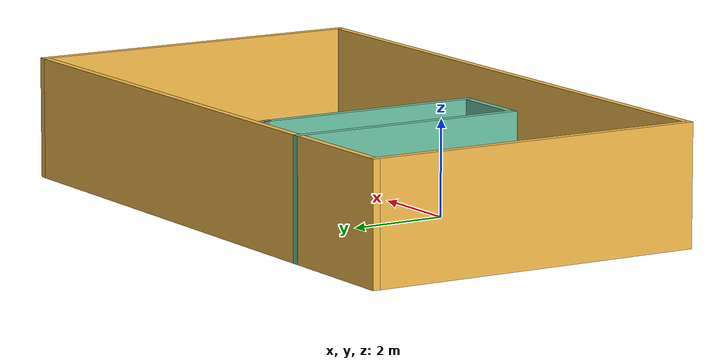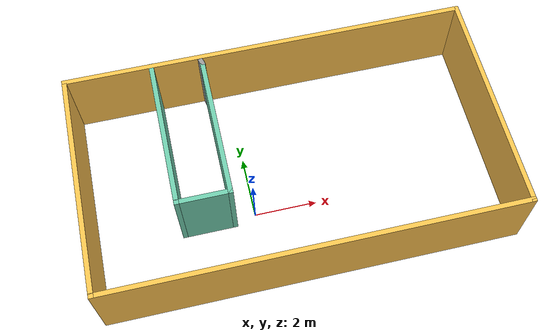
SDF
<?xml version='1.0'?>
<sdf version='1.6'>
  <model name='TestRoom'>
    <pose frame=''>1.40818 1.12916 0 0 -0 0</pose>
    <link name='Wall_0'>
      <collision name='Wall_0_Collision'>
        <geometry>
          <box>
            <size>7.25 0.15 2.5</size>
          </box>
        </geometry>
        <pose frame=''>0 0 1.25 0 -0 0</pose>
      </collision>
      <visual name='Wall_0_Visual'>
        <pose frame=''>0 0 1.25 0 -0 0</pose>
        <geometry>
          <box>
            <size>7.25 0.15 2.5</size>
          </box>
        </geometry>
        <material>
          <script>
            <uri>file://media/materials/scripts/gazebo.material</uri>
            <name>Gazebo/Grey</name>
          </script>
          <ambient>1 0.764706 0.305882 1</ambient>
        </material>
        <meta>
          <layer>0</layer>
        </meta>
      </visual>
      <pose frame=''>-6.425 -0.001985 0 0 0 -1.5708</pose>
    </link>
    <link name='Wall_1'>
      <collision name='Wall_1_Collision'>
        <geometry>
          <box>
            <size>13 0.15 2.5</size>
          </box>
        </geometry>
        <pose frame=''>0 0 1.25 0 -0 0</pose>
      </collision>
      <visual name='Wall_1_Visual'>
        <pose frame=''>0 0 1.25 0 -0 0</pose>
        <geometry>
          <box>
            <size>13 0.15 2.5</size>
          </box>
        </geometry>
        <material>
          <script>
            <uri>file://media/materials/scripts/gazebo.material</uri>
            <name>Gazebo/Grey</name>
          </script>
          <ambient>1 0.764706 0.305882 1</ambient>
        </material>
        <meta>
          <layer>0</layer>
        </meta>
      </visual>
      <pose frame=''>0 -3.55199 0 0 -0 0</pose>
    </link>
    <link name='Wall_2'>
      <collision name='Wall_2_Collision'>
        <geometry>
          <box>
            <size>7.25 0.15 2.5</size>
          </box>
        </geometry>
        <pose frame=''>0 0 1.25 0 -0 0</pose>
      </collision>
      <visual name='Wall_2_Visual'>
        <pose frame=''>0 0 1.25 0 -0 0</pose>
        <geometry>
          <box>
            <size>7.25 0.15 2.5</size>
          </box>
        </geometry>
        <material>
          <script>
            <uri>file://media/materials/scripts/gazebo.material</uri>
            <name>Gazebo/Grey</name>
          </script>
          <ambient>1 0.764706 0.305882 1</ambient>
        </material>
        <meta>
          <layer>0</layer>
        </meta>
      </visual>
      <pose frame=''>6.425 -0.001985 0 0 -0 1.5708</pose>
    </link>
    <link name='Wall_3'>
      <collision name='Wall_3_Collision'>
        <geometry>
          <box>
            <size>13 0.15 2.5</size>
          </box>
        </geometry>
        <pose frame=''>0 0 1.25 0 -0 0</pose>
      </collision>
      <visual name='Wall_3_Visual'>
        <pose frame=''>0 0 1.25 0 -0 0</pose>
        <geometry>
          <box>
            <size>13 0.15 2.5</size>
          </box>
        </geometry>
        <material>
          <script>
            <uri>file://media/materials/scripts/gazebo.material</uri>
            <name>Gazebo/Grey</name>
          </script>
          <ambient>1 0.764706 0.305882 1</ambient>
        </material>
        <meta>
          <layer>0</layer>
        </meta>
      </visual>
      <pose frame=''>0 3.54801 0 0 -0 3.14159</pose>
    </link>
    <link name='Wall_5'>
      <collision name='Wall_5_Collision'>
        <geometry>
          <box>
            <size>5 0.15 2.5</size>
          </box>
        </geometry>
        <pose frame=''>0 0 1.25 0 -0 0</pose>
      </collision>
      <visual name='Wall_5_Visual'>
        <pose frame=''>0 0 1.25 0 -0 0</pose>
        <geometry>
          <box>
            <size>5 0.15 2.5</size>
          </box>
        </geometry>
        <material>
          <script>
            <uri>file://media/materials/scripts/gazebo.material</uri>
            <name>Gazebo/Grey</name>
          </script>
          <ambient>0.435294 0.796078 0.67451 1</ambient>
        </material>
        <meta>
          <layer>0</layer>
        </meta>
      </visual>
      <pose frame=''>-3.6891 1.12698 0 0 0 -1.5708</pose>
    </link>
    <link name='Wall_7'>
      <collision name='Wall_7_Collision'>
        <geometry>
          <box>
            <size>1.75 0.15 2.5</size>
          </box>
        </geometry>
        <pose frame=''>0 0 1.25 0 -0 0</pose>
      </collision>
      <visual name='Wall_7_Visual'>
        <pose frame=''>0 0 1.25 0 -0 0</pose>
        <geometry>
          <box>
            <size>1.75 0.15 2.5</size>
          </box>
        </geometry>
        <material>
          <script>
            <uri>file://media/materials/scripts/gazebo.material</uri>
            <name>Gazebo/Grey</name>
          </script>
          <ambient>0.435294 0.796078 0.67451 1</ambient>
        </material>
        <meta>
          <layer>0</layer>
        </meta>
      </visual>
      <pose frame=''>-2.8891 -1.29801 0 0 -0 0</pose>
    </link>
    <link name='Wall_8'>
      <collision name='Wall_8_Collision'>
        <geometry>
          <box>
            <size>4.75 0.15 2.5</size>
          </box>
        </geometry>
        <pose frame=''>0 0 1.25 0 -0 0</pose>
      </collision>
      <visual name='Wall_8_Visual'>
        <pose frame=''>0 0 1.25 0 -0 0</pose>
        <geometry>
          <box>
            <size>4.75 0.15 2.5</size>
          </box>
        </geometry>
        <material>
          <script>
            <uri>file://media/materials/scripts/gazebo.material</uri>
            <name>Gazebo/Grey</name>
          </script>
          <ambient>0.435294 0.796078 0.67451 1</ambient>
        </material>
        <meta>
          <layer>0</layer>
        </meta>
      </visual>
      <pose frame=''>-2.08909 1.00198 0 0 -0 1.5708</pose>
    </link>
    <link name='Wall_9'>
      <collision name='Wall_9_Collision'>
        <geometry>
          <box>
            <size>0.25 0.15 2.5</size>
          </box>
        </geometry>
        <pose frame=''>0 0 1.25 0 -0 0</pose>
      </collision>
      <visual name='Wall_9_Visual'>
        <pose frame=''>0 0 1.25 0 -0 0</pose>
        <geometry>
          <box>
            <size>0.25 0.15 2.5</size>
          </box>
        </geometry>
        <material>
          <script>
            <uri>file://media/materials/scripts/gazebo.material</uri>
            <name>Gazebo/Grey</name>
          </script>
          <ambient>1 1 1 1</ambient>
        </material>
        <meta>
          <layer>0</layer>
        </meta>
      </visual>
      <pose frame=''>-2.10204 3.35028 0 0 -0 1.8326</pose>
    </link>
    <static>1</static>
  </model>
</sdf>
